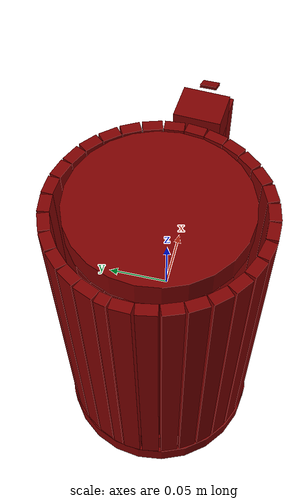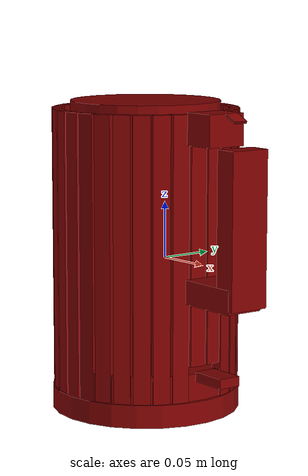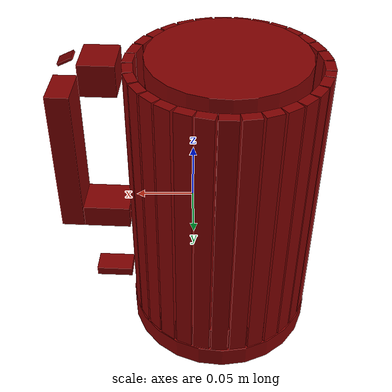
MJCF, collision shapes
<?xml version='1.0' encoding='UTF-8'?>
<mujoco model="model">
  <option timestep="0.002" gravity="0.0 0.0 -9.81"/>
  <compiler angle="radian"/>
  <asset>
    <mesh file="visuals/button_lid.obj" name="button_lid_vis"/>
    <mesh file="visuals/Body001.obj" name="Body001_vis"/>
    <mesh file="visuals/kettle_main.obj" name="kettle_main_vis"/>
    <mesh file="visuals/lid.obj" name="lid_vis"/>
    <mesh file="visuals/switch.obj" name="switch_vis"/>
    <texture file="visuals/T_BC001.png" name="Body001_material" type="2d"/>
    <material name="Body001_material" rgba="1 1 1 1.0" texture="Body001_material" shininess="0.2512328028678894" specular="0.3103448502657381"/>
    <texture file="visuals/T_BC001.png" name="kettle_main_material" type="2d"/>
    <material name="kettle_main_material" rgba="1 1 1 1.0" texture="kettle_main_material" shininess="0.2512328028678894" specular="0.3103448502657381"/>
    <texture file="visuals/T_BC001.png" name="button_lid_material" type="2d"/>
    <material name="button_lid_material" rgba="1 1 1 1.0" texture="button_lid_material" shininess="0.2512328028678894" specular="0.3103448502657381"/>
    <texture file="visuals/T_BC001.png" name="lid_material" type="2d"/>
    <material name="lid_material" rgba="1 1 1 1.0" texture="lid_material" shininess="0.2512328028678894" specular="0.3103448502657381"/>
    <texture file="visuals/T_BC001.png" name="switch_material" type="2d"/>
    <material name="switch_material" rgba="1 1 1 1.0" texture="switch_material" shininess="0.2512328028678894" specular="0.3103448502657381"/>
  </asset>
  <default>
    <default class="visual">
      <geom conaffinity="0" contype="0" group="1" type="mesh"/>
    </default>
    <default class="collision">
      <geom group="0" rgba="0.5 0 0 0.5" density="1.0" solref="0.004 1" solimp="0.998 0.998 0.001"/>
    </default>
    <default class="spawn">
      <geom group="0" rgba="1 1 1 0.5" contype="0" conaffinity="0"/>
      <site group="0" rgba="1 1 1 0.5"/>
    </default>
    <default class="region">
      <geom group="1" conaffinity="0" contype="0" rgba="0 1 0 0" mass="0"/>
    </default>
  </default>
  <worldbody>
    <body>
      <body name="object">
        <geom mesh="Body001_vis" type="mesh" solimp="0.998 0.998 0.001" solref="0.001 1" friction="0.95 0.3 0.1" class="visual" material="Body001_material"/>
        <geom type="cylinder" pos="-0.02671792 -0.00003802 -0.12844845" size="0.08444634824991226 0.010209722444415092" quat="1.0 0.0 0.0 0.0" class="collision"/>
        <body name="kettle_main">
          <geom mesh="kettle_main_vis" type="mesh" solimp="0.998 0.998 0.001" solref="0.001 1" friction="0.95 0.3 0.1" class="visual" material="kettle_main_material"/>
          <geom type="box" pos="-0.02673091 -0.07860982 0.00673660" size="0.0074759433045983315 0.004363123793154955 0.12471074610948563" quat="1.0 0.0 0.0 0.0" class="collision"/>
          <geom type="box" pos="0.00477392 -0.07180212 0.00673660" size="0.007475841790437698 0.004363126587122679 0.12471074610948563" quat="4.238201825046417e-07 0.20617419481277466 -0.9785153269767761 8.929941941460129e-08" class="collision"/>
          <geom type="box" pos="-0.01068780 -0.07686561 0.00673660" size="0.007475842721760273 0.004363126587122679 0.12471074610948563" quat="4.306424443711876e-07 0.10693040490150452 -0.9942665100097656 4.6314312385220546e-08" class="collision"/>
          <geom type="box" pos="0.01887936 -0.06330270 0.00673660" size="0.007475842721760273 0.004363126587122679 0.12471074610948563" quat="4.0854882854546304e-07 0.3320642113685608 -0.9432567954063416 1.4382553104042017e-07" class="collision"/>
          <geom type="box" pos="0.03108598 -0.05218111 0.00673660" size="0.007475842721760273 0.004363126587122679 0.12471074610948563" quat="3.938663155622635e-07 0.41601479053497314 -0.9093578457832336 1.801867171025151e-07" class="collision"/>
          <geom type="box" pos="0.04094170 -0.03919325 0.00673660" size="0.007475842721760273 0.004363126587122679 0.12471074610948563" quat="3.747649941487907e-07 0.5013291239738464 -0.865256667137146 2.1713849207571911e-07" class="collision"/>
          <geom type="box" pos="0.04766037 -0.02450411 0.00673660" size="0.007475842721760273 0.004363126587122679 0.12471074610948563" quat="3.501059211430402e-07 0.588738203048706 -0.8083238005638123 2.5499761591163406e-07" class="collision"/>
          <geom type="box" pos="0.05149063 -0.00894192 0.02229435" size="0.00747585529461503 0.004363126587122679 0.10915300250053406" quat="3.263175756273995e-07 0.6575611233711243 -0.7534012198448181 2.8480656055762665e-07" class="collision"/>
          <geom type="box" pos="0.05161621 0.00728335 0.02228536" size="0.0074758571572601795 0.004363126587122679 0.10916198045015335" quat="-2.147158397747262e-07 -0.7387588024139404 0.6739699244499207 -3.4737618648250645e-07" class="collision"/>
          <geom type="box" pos="0.04847665 0.02310675 0.00673660" size="0.007475841324776411 0.004363126587122679 0.12471074610948563" quat="2.970163279769622e-07 0.8089416027069092 -0.5878890156745911 2.802756000619411e-07" class="collision"/>
          <geom type="box" pos="0.04207194 0.03802596 0.00673660" size="0.007475842256098986 0.004363126587122679 0.12471074610948563" quat="-1.3982163693526672e-07 -0.8600683212280273 0.5101788640022278 -3.836969142412272e-07" class="collision"/>
          <geom type="box" pos="0.03265326 0.05121213 0.00673660" size="0.007475842256098986 0.004363127052783966 0.12471074610948563" quat="2.359989395017692e-07 0.9088815450668335 -0.4170543849468231 3.3328311133118405e-07" class="collision"/>
          <geom type="box" pos="0.02116245 0.06245177 0.00673660" size="0.007475841324776411 0.004363126587122679 0.12471074610948563" quat="2.0226659103173006e-07 0.945317804813385 -0.32615071535110474 3.5476944049150916e-07" class="collision"/>
          <geom type="box" pos="0.00713907 0.07071929 0.00673660" size="0.007475841790437698 0.0043631261214613914 0.12471074610948563" quat="1.578725346007559e-07 0.9778256416320801 -0.20942065119743347 3.7662911722691206e-07" class="collision"/>
          <geom type="box" pos="-0.00770409 0.07618736 0.00673660" size="0.007475842721760273 0.004363126587122679 0.12471074610948563" quat="1.288943423105593e-07 0.9908782243728638 -0.13476020097732544 3.875082654758444e-07" class="collision"/>
          <geom type="box" pos="-0.02353272 0.07858562 0.00673660" size="0.007475842721760273 0.004363127052783966 0.12471074610948563" quat="8.481143254357448e-08 0.9997295141220093 -0.02325654961168766 3.9948287167135277e-07" class="collision"/>
          <geom type="box" pos="-0.03949217 0.07749550 0.00673660" size="0.007475841324776411 0.004363126587122679 0.12471074610948563" quat="1.0430600383415367e-07 -0.9973849654197693 -0.07227186858654022 -3.9483333580392355e-07" class="collision"/>
          <geom type="box" pos="-0.05497196 0.07330942 0.00673660" size="0.007475842721760273 0.004363127052783966 0.12471074610948563" quat="5.120769919209067e-10 0.9829936623573303 0.18363963067531586 4.0837878145794093e-07" class="collision"/>
          <geom type="box" pos="-0.06931802 0.06594017 0.00673660" size="0.007475841790437698 0.004363126587122679 0.12471074610948563" quat="-4.540866882507544e-08 0.9561119079589844 0.2930017411708832 4.058462934608542e-07" class="collision"/>
          <geom type="box" pos="-0.08165824 0.05595462 0.00673660" size="0.007475842721760273 0.004363126587122679 0.12471074610948563" quat="2.232767712939676e-07 -0.9239467978477478 -0.38252103328704834 -3.419366407797497e-07" class="collision"/>
          <geom type="box" pos="-0.09186183 0.04378881 0.00673660" size="0.007475842721760273 0.004363127052783966 0.12471074610948563" quat="-1.2095752310870012e-07 0.8839080333709717 0.4676607847213745 3.9005453800200485e-07" class="collision"/>
          <geom type="box" pos="-0.09957993 0.02992240 0.00673660" size="0.007475842721760273 0.004363126587122679 0.12471074610948563" quat="2.830099958828214e-07 -0.8366203308105469 -0.5477831959724426 -2.944121320069826e-07" class="collision"/>
          <geom type="box" pos="-0.04285489 -0.07687679 0.00673660" size="0.00747584318742156 0.004363127052783966 0.12471074610948563" quat="4.301141984797141e-07 -0.11771966516971588 -0.9930468797683716 -5.0987374322630785e-08" class="collision"/>
          <geom type="box" pos="-0.05805038 -0.07210465 0.00673660" size="0.007475843653082848 0.004363126587122679 0.12471074610948563" quat="4.2420293766554096e-07 -0.2019345909357071 -0.9793990254402161 -8.746308566287553e-08" class="collision"/>
          <geom type="box" pos="-0.07224624 -0.06414773 0.00673660" size="0.007475842721760273 0.004363126587122679 0.12471074610948563" quat="4.1283601603936404e-07 -0.3024821877479553 -0.9531550407409668 -1.310127828446639e-07" class="collision"/>
          <geom type="box" pos="-0.08436496 -0.05372437 0.00673660" size="0.007475842721760273 0.004363126587122679 0.12471074610948563" quat="3.973850084548758e-07 -0.3977776765823364 -0.9174818396568298 -1.7228778403932665e-07" class="collision"/>
          <geom type="box" pos="-0.09397203 -0.04077890 0.00673660" size="0.007475842721760273 0.004363126587122679 0.12471074610948563" quat="3.7910510286565113e-07 -0.4836215674877167 -0.8752772212028503 -2.094689932619076e-07" class="collision"/>
          <geom type="box" pos="-0.10098371 -0.02644156 0.00673660" size="0.007475841790437698 0.004363126587122679 0.12471074610948563" quat="3.5722160873774556e-07 -0.5654937028884888 -0.8247526288032532 -2.4492990746693977e-07" class="collision"/>
          <geom type="box" pos="-0.10532677 -0.01074374 0.00673660" size="0.007475839927792549 0.004363126587122679 0.12471074610948563" quat="3.32345479137075e-07 -0.6412659883499146 -0.7673186659812927 -2.7774882482844987e-07" class="collision"/>
          <geom type="box" pos="-0.10621631 0.00537268 0.00673660" size="0.007475842721760273 0.004363127052783966 0.12471074610948563" quat="-2.2257719933804765e-07 0.7232064008712769 0.6906319856643677 3.423924113121757e-07" class="collision"/>
          <geom type="box" pos="-0.10431287 0.01805310 0.00673660" size="0.0043244315311312675 0.004363126587122679 0.12471074610948563" quat="3.087532149947947e-07 -0.7830078601837158 -0.6220118403434753 -2.6729119895207987e-07" class="collision"/>
          <geom class="collision" type="box" pos="0.07473324 -0.00844429 0.12016316" size="0.01504150778055191 0.017996322363615036 0.013837083242833614" quat="0.9994867444038391 0.0 0.0 -0.03203532472252846" name="handle_1"/>
          <geom class="collision" type="box" pos="0.08512285 -0.00833645 -0.01968333" size="0.02877083420753479 0.01722337305545807 0.010504625737667084" quat="0.9994867444038391 0.0 0.0 -0.03203532472252846" name="handle_2"/>
          <geom class="collision" type="box" pos="0.10820916 -0.00833645 0.03920008" size="0.010158251971006393 0.01841774210333824 0.06686317920684814" quat="0.9994867444038391 0.0 0.0 -0.03203532472252846" name="handle_main"/>
          <geom type="cylinder" pos="-0.02570136 -0.00000000 -0.10567633" size="0.08158671855926514 0.01201014593243599" quat="1.0 0.0 0.0 0.0" class="collision"/>
          <body name="button_lid">
            <joint axis="0.0 0.0 -1.0" pos="0.09977855 -0.00906681 0.12857996" limited="true" name="button_lid_joint" range="0.0 0.003" type="slide" damping="1" frictionloss="1" armature=".01" stiffness="0.05" springref="-2"/>
            <geom mesh="button_lid_vis" type="mesh" solimp="0.998 0.998 0.001" solref="0.001 1" friction="0.95 0.3 0.1" class="visual" material="button_lid_material"/>
            <geom class="collision" type="box" pos="0.10103051 -0.00943971 0.13090477" size="0.006649842951446772 0.0064285448752343655 0.0011010953458026052" quat="0.974043607711792 -0.006441115401685238 0.22453688085079193 -0.027941642329096794" name="button_lid_main"/>
          </body>
          <body name="lid">
            <joint axis="0.0 1.0 0.0" pos="0.06034513 -0.00677139 0.13657834" limited="true" name="lid_joint" range="0.0 1.5707963267948966" type="hinge" damping="1" frictionloss="0.1" armature=".01" stiffness="0.05" springref="-6"/>
            <geom mesh="lid_vis" type="mesh" solimp="0.998 0.998 0.001" solref="0.001 1" friction="0.95 0.3 0.1" class="visual" material="lid_material"/>
            <geom class="collision" type="cylinder" pos="-0.02726131 -0.00003802 0.12786896" size="0.06680486142635345 0.010236123576760292" quat="1.0 0.0 0.0 0.0" name="lid_main"/>
          </body>
          <body name="switch">
            <joint axis="0.0 0.0 -1.0" pos="0.04940099 -0.00502505 -0.09478355" limited="true" name="switch_joint" range="0.0 0.005" type="slide" damping="1" frictionloss="1" armature=".01" stiffness="0.05" springref="-2"/>
            <geom mesh="switch_vis" type="mesh" solimp="0.998 0.998 0.001" solref="0.001 1" friction="0.95 0.3 0.1" class="visual" material="switch_material"/>
            <geom class="collision" type="box" pos="0.07600000 -0.00541766 -0.09467880" size="0.017 0.010291109792888165 0.004289291333407164" quat="0.9995887875556946 0.0 0.0 -0.02867441438138485" name="switch_main"/>
          </body>
        </body>
        <geom class="region" name="reg_main" type="box" pos="-4.999999997368221e-09 0.0 3.099500000000588e-05" size="0.120302465 0.08567355 0.139705565"/>
      </body>
    </body>
  </worldbody>
  <actuator>
     <motor name="button_lid_joint_actuator" joint="button_lid_joint" gear="0.5"/>
     <motor name="lid_joint_actuator" joint="lid_joint" gear="0.5"/>
     <motor name="switch_joint_actuator" joint="switch_joint" gear="0.1"/>
  </actuator>
</mujoco>
